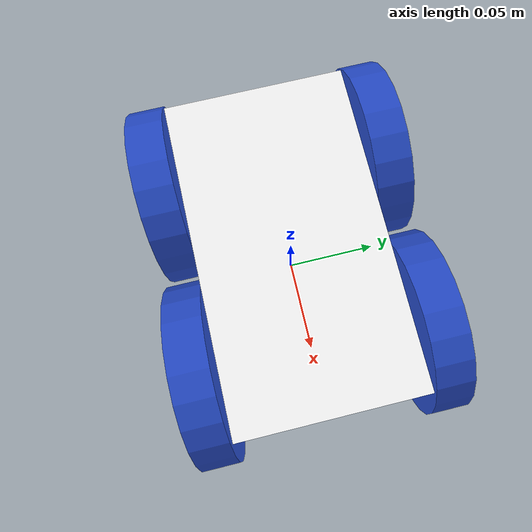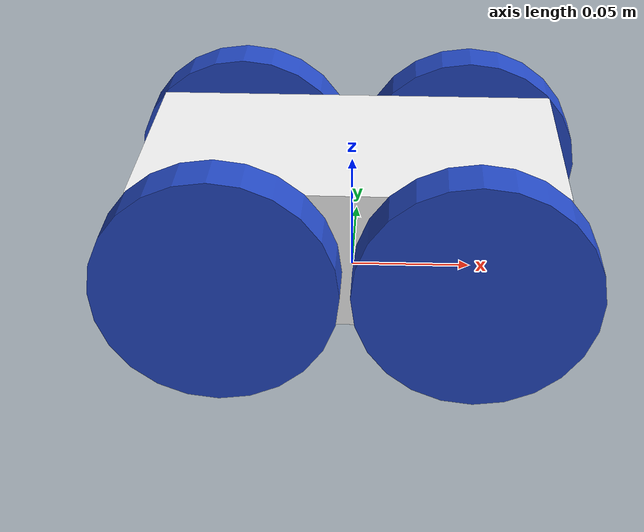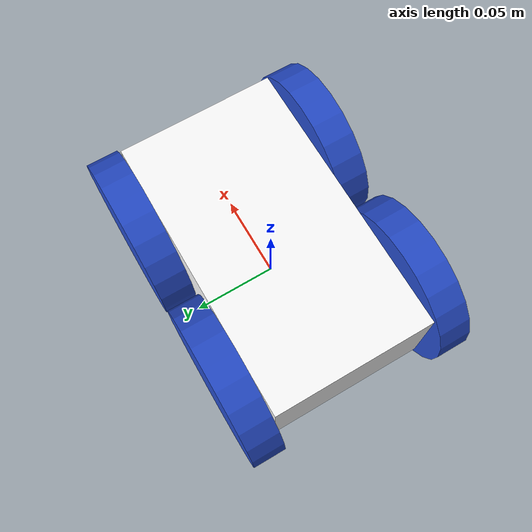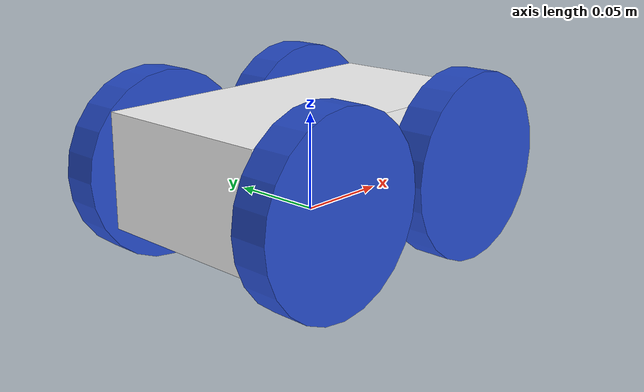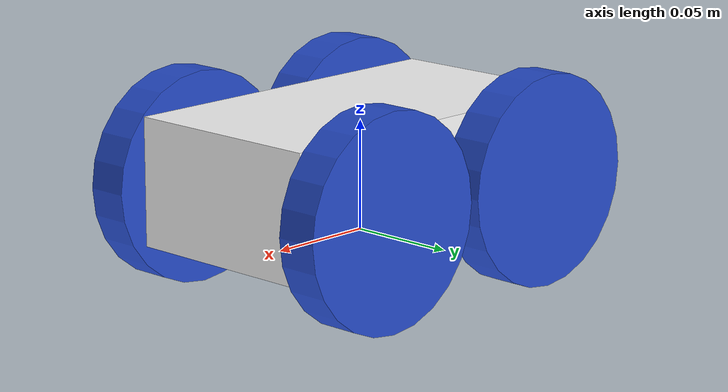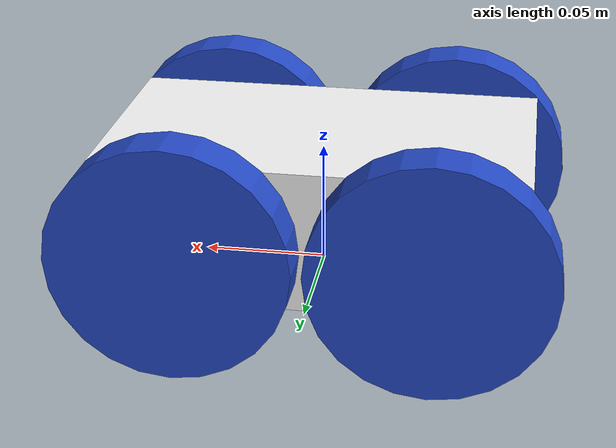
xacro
<?xml version="1.0"?>
<robot xmlns:xacro="http://www.ros.org/wiki/xacro">
    <xacro:include filename="inertial_macros.xacro"/>

    <material name="white">
        <color rgba="1 1 1 1"/>
    </material>

    <material name="orange">
        <color rgba="1 0.3 0.1 1"/>
    </material>

    <material name="blue">
        <color rgba="0.2 0.2 1 1"/>
    </material>

    <material name="black">
        <color rgba="0 0 0 1"/>
    </material>

    <!-- BASE LINK -->
    <link name="base_link">

    </link>

    <!-- CHASSIS LINK -->
    <joint name="chassis_joint" type="fixed">
        <parent link="base_link"/>
        <child link="chassis"/>
        <origin xyz="-0.085 0.0 0.0"/>
    </joint>

    <link name="chassis">
        <visual>
            <origin xyz="0.085 0.0 0.029"/>
            <geometry>
                <box size="0.17 0.095 0.058"/>
            </geometry>
            <material name="white"/>
        </visual>
        <collision>
            <origin xyz="0.085 0.0 0.029"/>
            <geometry>
                <box size="0.17 0.095 0.058"/>
            </geometry>
        </collision>
        <xacro:inertial_box mass="0.5" x="0.17" y="0.095" z="0.058">
            <origin xyz="0.085 0.0 0.02995"/>
        </xacro:inertial_box>
    </link>

    <gazebo reference="chassis">
        <material>Gazebo/White</material>
    </gazebo>

    <!-- LEFT FRONT WHEEL LINK -->
    <joint name="left_front_wheel_joint" type="continuous">
        <parent link="base_link"/>
        <child link="left_front_wheel"/>
        <origin xyz="0.05 0.058 0.025" rpy="-${pi/2} 0.0 0.0"/>
        <axis xyz="0.0 0.0 1.0" rpy="0.0 0.0 0.0"/>
    </joint>

    <link name="left_front_wheel">
        <visual>
            <geometry>
                <cylinder radius="0.048" length="0.019"/>
                <material name="blue"/>
            </geometry>
        </visual>
        <collision>
            <geometry>
                <sphere radius="0.048" />
            </geometry>
        </collision>
        <xacro:inertial_cylinder mass="0.1" length="0.019" radius="0.048">
            <origin xyz="0 0 0" rpy="0 0 0" />
        </xacro:inertial_cylinder>
    </link>

    <gazebo reference="left_front_wheel">
        <material>Gazebo/Blue</material>
        <mu1 value="0.4"/>
        <mu2 value="0.6" />
    </gazebo>

    <!-- LEFT REAR WHEEL LINK -->
    <joint name="left_rear_wheel_joint" type="continuous">
        <parent link="base_link"/>
        <child link="left_rear_wheel"/>
        <origin xyz="-0.05 0.058 0.025" rpy="-${pi/2} 0.0 0.0"/>
        <axis xyz="0.0 0.0 1.0"/>
    </joint>

    <link name="left_rear_wheel">
        <visual>
            <geometry>
                <cylinder radius="0.048" length="0.019"/>
                <material name="blue"/>
            </geometry>
        </visual>
        <collision>
            <geometry>
                <sphere radius="0.048"/>
            </geometry>
        </collision>
        <xacro:inertial_cylinder mass="0.1" length="0.019" radius="0.048">
            <origin xyz="0 0 0" rpy="0 0 0" />
        </xacro:inertial_cylinder>
    </link>

    <gazebo reference="left_rear_wheel">
        <material>Gazebo/Blue</material>
        <mu1 value="0.4"/>
        <mu2 value="0.6" />
    </gazebo>

    <!-- RIGHT FRONT WHEEL LINK -->
    <joint name="right_front_wheel_joint" type="continuous">
        <parent link="base_link"/>
        <child link="right_front_wheel"/>
        <origin xyz="0.05 -0.058 0.025" rpy="${pi/2} 0.0 0.0"/>
        <axis xyz="0.0 0.0 -1.0"/>
    </joint>

    <link name="right_front_wheel">
        <visual>
            <geometry>
                <cylinder radius="0.048" length="0.019"/>
                <material name="blue"/>
            </geometry>
        </visual>
        <collision>
            <geometry>
                <sphere radius="0.048" />
            </geometry>
        </collision>
        <xacro:inertial_cylinder mass="0.1" length="0.019" radius="0.048">
            <origin xyz="0 0 0" rpy="0 0 0" />
        </xacro:inertial_cylinder>
    </link>

    <gazebo reference="right_front_wheel">
        <material>Gazebo/Blue</material>
        <mu1 value="0.4"/>
        <mu2 value="0.6" />
    </gazebo>

   <!-- RIGHT REAR WHEEL LINK -->
    <joint name="right_rear_wheel_joint" type="continuous">
        <parent link="base_link"/>
        <child link="right_rear_wheel"/>
        <origin xyz="-0.05 -0.058 0.025" rpy="${pi/2} 0.0 0.0"/>
        <axis xyz="0.0 0.0 -1.0"/>
    </joint>

    <link name="right_rear_wheel">
        <visual>
            <geometry>
                <cylinder radius="0.048" length="0.019"/>
                <material name="blue"/>
            </geometry>
        </visual>
        <collision>
            <geometry>
                <sphere radius="0.048" />
            </geometry>
        </collision>
        <xacro:inertial_cylinder mass="0.1" length="0.019" radius="0.048">
            <origin xyz="0 0 0" rpy="0 0 0" />
        </xacro:inertial_cylinder>
   </link>

    <gazebo reference="right_rear_wheel">
        <material>Gazebo/Blue</material>
        <mu1 value="0.4"/>
        <mu2 value="0.6" />
    </gazebo>
</robot>
